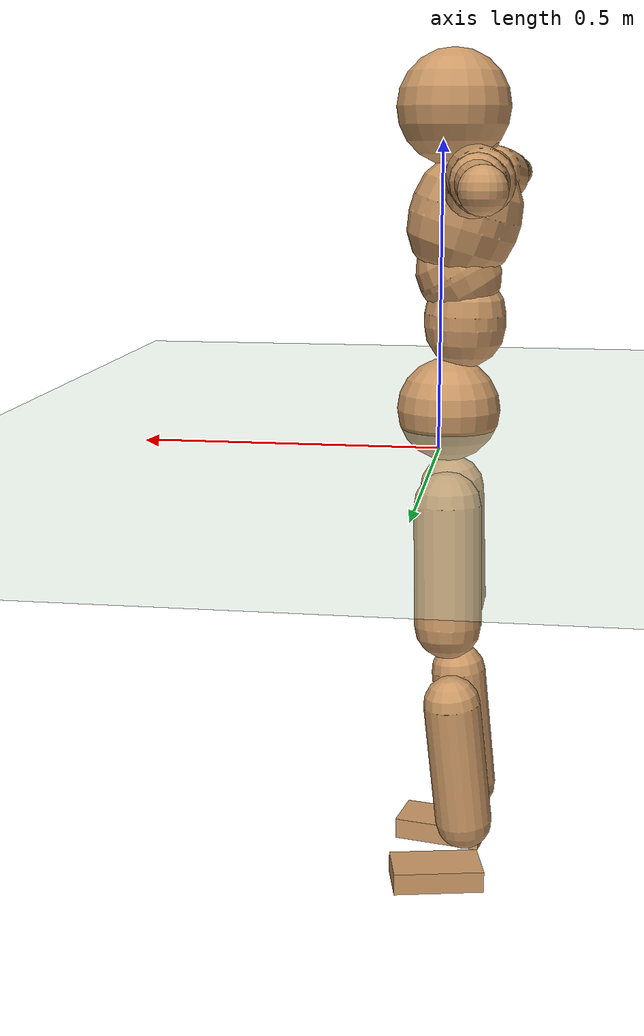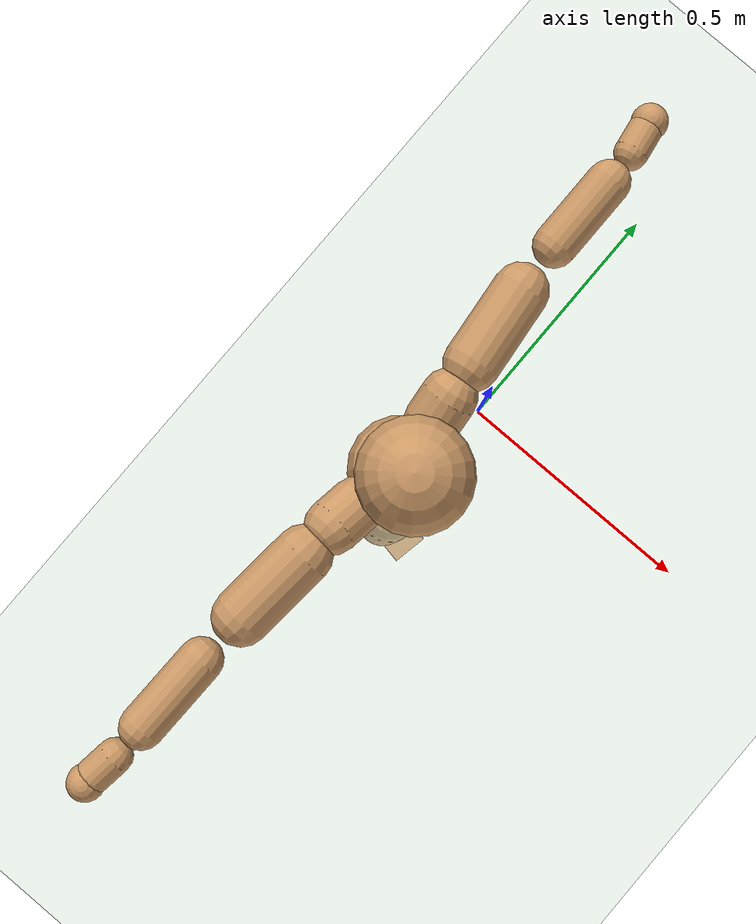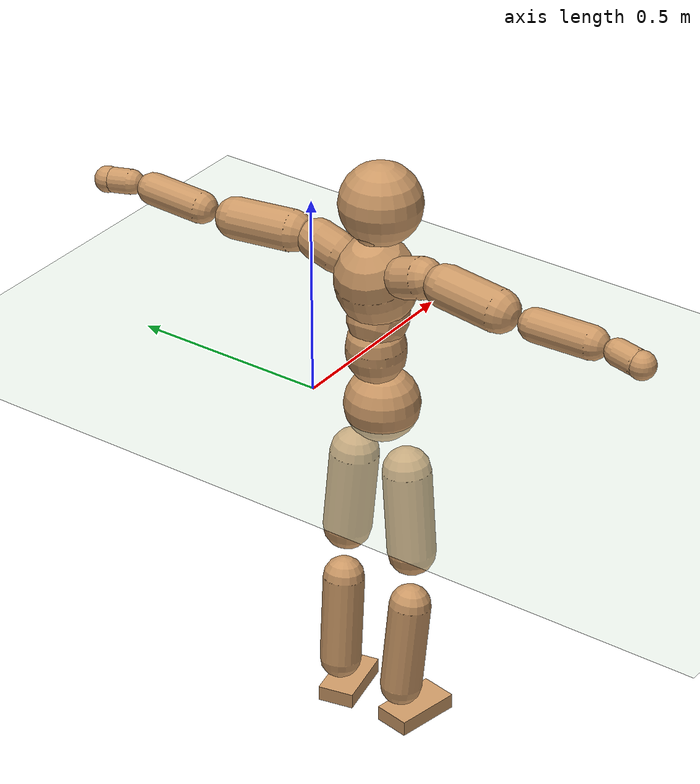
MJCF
<mujoco model="humanoid">
  <compiler coordinate="local"/>
  <default>
    <joint damping="0.0" armature="0.01" stiffness="0.0" limited="true"/>
    <geom conaffinity="1" condim="3" contype="7" margin="0.001" rgba="0.8 0.6 .4 1"/>
  </default>
  <asset>
    <texture type="skybox" builtin="gradient" rgb1=".4 .5 .6" rgb2="0 0 0" width="100" height="100"/>
    <texture builtin="flat" height="1278" mark="cross" markrgb="1 1 1" name="texgeom" random="0.01" rgb1="0.8 0.6 0.4" rgb2="0.8 0.6 0.4" type="cube" width="127"/>
    <texture builtin="checker" height="100" name="texplane" rgb1="0 0 0" rgb2="0.8 0.8 0.8" type="2d" width="100"/>
    <material name="MatPlane" reflectance="0.5" shininess="1" specular="1" texrepeat="60 60" texture="texplane"/>
    <material name="geom" texture="texgeom" texuniform="true"/>
  </asset>
  <worldbody>
    <light cutoff="100" diffuse="1 1 1" dir="-0 0 -1.3" directional="true" exponent="1" pos="0 0 1.3" specular=".1 .1 .1"/>
    <geom conaffinity="1" condim="3" name="floor" pos="0 0 0" rgba="0.8 0.9 0.8 1" size="100 100 .2" type="plane" material="MatPlane"/>
    <body name="Pelvis" pos="-0.0002 -0.2 0.0323">
      <freejoint name="Pelvis"/>
      <geom type="sphere" contype="1" conaffinity="1" density="500" size="0.0919" pos="0.0000 0.0000 0.0000" name="Pelvis"/>
      <body name="L_Hip" pos="-0.004 0.069 -0.087">
        <joint name="L_Hip_x" type="hinge" pos="0 0 0" axis="1 0 0" stiffness="800" damping="80" armature="0.02" range="-180.0000 180.0000"/>
        <joint name="L_Hip_y" type="hinge" pos="0 0 0" axis="0 1 0" stiffness="800" damping="80" armature="0.02" range="-180.0000 180.0000"/>
        <joint name="L_Hip_z" type="hinge" pos="0 0 0" axis="0 0 1" stiffness="800" damping="80" armature="0.02" range="-180.0000 180.0000"/>
        <geom type="capsule" contype="1" conaffinity="1" density="500" fromto="-0.0019 0.0059 -0.0716 -0.0074 0.0236 -0.2865" size="0.0597" name="L_Hip"/>
        <body name="L_Knee" pos="-0.0093 0.0295 -0.3581">
          <joint name="L_Knee_x" type="hinge" pos="0 0 0" axis="1 0 0" stiffness="800" damping="80" armature="0.02" range="-180.0000 180.0000"/>
          <joint name="L_Knee_y" type="hinge" pos="0 0 0" axis="0 1 0" stiffness="800" damping="80" armature="0.02" range="-180.0000 180.0000"/>
          <joint name="L_Knee_z" type="hinge" pos="0 0 0" axis="0 0 1" stiffness="800" damping="80" armature="0.02" range="-180.0000 180.0000"/>
          <geom type="capsule" contype="1" conaffinity="1" density="500" fromto="-0.0082 -0.0021 -0.0755 -0.0327 -0.0085 -0.3021" size="0.0513" name="L_Knee"/>
          <body name="L_Ankle" pos="-0.0409 -0.0107 -0.3777">
            <joint name="L_Ankle_x" type="hinge" pos="0 0 0" axis="1 0 0" stiffness="800" damping="80" armature="0.02" range="-180.0000 180.0000"/>
            <joint name="L_Ankle_y" type="hinge" pos="0 0 0" axis="0 1 0" stiffness="800" damping="80" armature="0.02" range="-180.0000 180.0000"/>
            <joint name="L_Ankle_z" type="hinge" pos="0 0 0" axis="0 0 1" stiffness="800" damping="80" armature="0.02" range="-180.0000 180.0000"/>
            <geom type="box" contype="1" conaffinity="1" density="500" pos="0.0565 0.0118 -0.0272" size="0.0821 0.0451 0.0197" quat="0.9947 0.0000 0.0000 0.1031" name="L_Ankle"/>
            <body name="L_Toe" pos="0.1131 0.0237 -0.0543">
              <joint name="L_Toe_x" type="hinge" pos="0 0 0" axis="1 0 0" stiffness="500" damping="50" armature="0.02" range="-180.0000 180.0000"/>
              <joint name="L_Toe_y" type="hinge" pos="0 0 0" axis="0 1 0" stiffness="500" damping="50" armature="0.02" range="-180.0000 180.0000"/>
              <joint name="L_Toe_z" type="hinge" pos="0 0 0" axis="0 0 1" stiffness="500" damping="50" armature="0.02" range="-180.0000 180.0000"/>
              <geom type="box" contype="1" conaffinity="1" density="500" pos="0.0000 0.0000 0.0267" size="0.0009 0.0023 0.001" quat="0.9940 0.0000 0.0000 0.1096" name="L_Toe"/>
            </body>
          </body>
        </body>
      </body>
      <body name="R_Hip" pos="-0.0013 -0.067 -0.0866">
        <joint name="R_Hip_x" type="hinge" pos="0 0 0" axis="1 0 0" stiffness="800" damping="80" armature="0.02" range="-180.0000 180.0000"/>
        <joint name="R_Hip_y" type="hinge" pos="0 0 0" axis="0 1 0" stiffness="800" damping="80" armature="0.02" range="-180.0000 180.0000"/>
        <joint name="R_Hip_z" type="hinge" pos="0 0 0" axis="0 0 1" stiffness="800" damping="80" armature="0.02" range="-180.0000 180.0000"/>
        <geom type="capsule" contype="1" conaffinity="1" density="500" fromto="-0.0022 -0.0068 -0.0727 -0.0089 -0.0273 -0.2907" size="0.059" name="R_Hip"/>
        <body name="R_Knee" pos="-0.0112 -0.0341 -0.3634">
          <joint name="R_Knee_x" type="hinge" pos="0 0 0" axis="1 0 0" stiffness="800" damping="80" armature="0.02" range="-180.0000 180.0000"/>
          <joint name="R_Knee_y" type="hinge" pos="0 0 0" axis="0 1 0" stiffness="800" damping="80" armature="0.02" range="-180.0000 180.0000"/>
          <joint name="R_Knee_z" type="hinge" pos="0 0 0" axis="0 0 1" stiffness="800" damping="80" armature="0.02" range="-180.0000 180.0000"/>
          <geom type="capsule" contype="1" conaffinity="1" density="500" fromto="-0.0080 0.0026 -0.0757 -0.0321 0.0105 -0.3028" size="0.0515" name="R_Knee"/>
          <body name="R_Ankle" pos="-0.0401 0.0132 -0.3785">
            <joint name="R_Ankle_x" type="hinge" pos="0 0 0" axis="1 0 0" stiffness="800" damping="80" armature="0.02" range="-180.0000 180.0000"/>
            <joint name="R_Ankle_y" type="hinge" pos="0 0 0" axis="0 1 0" stiffness="800" damping="80" armature="0.02" range="-180.0000 180.0000"/>
            <joint name="R_Ankle_z" type="hinge" pos="0 0 0" axis="0 0 1" stiffness="800" damping="80" armature="0.02" range="-180.0000 180.0000"/>
            <geom type="box" contype="1" conaffinity="1" density="500" pos="0.0582 -0.0112 -0.0223" size="0.0827 0.0456 0.0195" quat="0.9955 0.0000 0.0000 -0.0952" name="R_Ankle"/>
            <body name="R_Toe" pos="0.1164 -0.0225 -0.0447">
              <joint name="R_Toe_x" type="hinge" pos="0 0 0" axis="1 0 0" stiffness="500" damping="50" armature="0.02" range="-180.0000 180.0000"/>
              <joint name="R_Toe_y" type="hinge" pos="0 0 0" axis="0 1 0" stiffness="500" damping="50" armature="0.02" range="-180.0000 180.0000"/>
              <joint name="R_Toe_z" type="hinge" pos="0 0 0" axis="0 0 1" stiffness="500" damping="50" armature="0.02" range="-180.0000 180.0000"/>
              <geom type="box" contype="1" conaffinity="1" density="500" pos="0.0000 0.0000 0.0242" size="0.0009 0.0023 0.0011" quat="0.9963 0.0000 0.0000 -0.0855" name="R_Toe"/>
            </body>
          </body>
        </body>
      </body>
      <body name="Torso" pos="-0.0251 -0.0025 0.1001">
        <joint name="Torso_x" type="hinge" pos="0 0 0" axis="1 0 0" stiffness="1000" damping="100" armature="0.02" range="-180.0000 180.0000"/>
        <joint name="Torso_y" type="hinge" pos="0 0 0" axis="0 1 0" stiffness="1000" damping="100" armature="0.02" range="-180.0000 180.0000"/>
        <joint name="Torso_z" type="hinge" pos="0 0 0" axis="0 0 1" stiffness="1000" damping="100" armature="0.02" range="-180.0000 180.0000"/>
        <geom type="capsule" contype="1" conaffinity="1" density="500" fromto="-0.0016 0.0017 0.0704 -0.0011 0.0012 0.0469" size="0.0717" name="Torso"/>
        <body name="Spine" pos="-0.0026 0.0029 0.1173">
          <joint name="Spine_x" type="hinge" pos="0 0 0" axis="1 0 0" stiffness="1000" damping="100" armature="0.02" range="-180.0000 180.0000"/>
          <joint name="Spine_y" type="hinge" pos="0 0 0" axis="0 1 0" stiffness="1000" damping="100" armature="0.02" range="-180.0000 180.0000"/>
          <joint name="Spine_z" type="hinge" pos="0 0 0" axis="0 0 1" stiffness="1000" damping="100" armature="0.02" range="-180.0000 180.0000"/>
          <geom type="capsule" contype="1" conaffinity="1" density="500" fromto="0.0162 0.0015 0.0283 0.0108 0.0010 0.0189" size="0.0734" name="Spine"/>
          <body name="Chest" pos="0.027 0.0026 0.0472">
            <joint name="Chest_x" type="hinge" pos="0 0 0" axis="1 0 0" stiffness="1000" damping="100" armature="0.02" range="-180.0000 180.0000"/>
            <joint name="Chest_y" type="hinge" pos="0 0 0" axis="0 1 0" stiffness="1000" damping="100" armature="0.02" range="-180.0000 180.0000"/>
            <joint name="Chest_z" type="hinge" pos="0 0 0" axis="0 0 1" stiffness="1000" damping="100" armature="0.02" range="-180.0000 180.0000"/>
            <geom type="capsule" contype="1" conaffinity="1" density="500" fromto="-0.0268 -0.0005 0.0866 -0.0179 -0.0003 0.0577" size="0.0968" name="Chest"/>
            <body name="Neck" pos="-0.0505 -0.0005 0.2016">
              <joint name="Neck_x" type="hinge" pos="0 0 0" axis="1 0 0" stiffness="500" damping="50" armature="0.02" range="-180.0000 180.0000"/>
              <joint name="Neck_y" type="hinge" pos="0 0 0" axis="0 1 0" stiffness="500" damping="50" armature="0.02" range="-180.0000 180.0000"/>
              <joint name="Neck_z" type="hinge" pos="0 0 0" axis="0 0 1" stiffness="500" damping="50" armature="0.02" range="-180.0000 180.0000"/>
              <geom type="capsule" contype="1" conaffinity="1" density="500" fromto="0.0100 0.0005 0.0114 0.0399 0.0021 0.0455" size="0.0411" name="Neck"/>
              <body name="Head" pos="0.0499 0.0027 0.0569">
                <joint name="Head_x" type="hinge" pos="0 0 0" axis="1 0 0" stiffness="500" damping="50" armature="0.02" range="-180.0000 180.0000"/>
                <joint name="Head_y" type="hinge" pos="0 0 0" axis="0 1 0" stiffness="500" damping="50" armature="0.02" range="-180.0000 180.0000"/>
                <joint name="Head_z" type="hinge" pos="0 0 0" axis="0 0 1" stiffness="500" damping="50" armature="0.02" range="-180.0000 180.0000"/>
                <geom type="sphere" contype="1" conaffinity="1" density="500" size="0.0985" pos="0.0000 0.0000 0.0000" name="Head"/>
              </body>
            </body>
            <body name="L_Thorax" pos="-0.0392 0.0761 0.1169">
              <joint name="L_Thorax_x" type="hinge" pos="0 0 0" axis="1 0 0" stiffness="500" damping="50" armature="0.02" range="-180.0000 180.0000"/>
              <joint name="L_Thorax_y" type="hinge" pos="0 0 0" axis="0 1 0" stiffness="500" damping="50" armature="0.02" range="-180.0000 180.0000"/>
              <joint name="L_Thorax_z" type="hinge" pos="0 0 0" axis="0 0 1" stiffness="500" damping="50" armature="0.02" range="-180.0000 180.0000"/>
              <geom type="capsule" contype="1" conaffinity="1" density="500" fromto="-0.0016 0.0169 0.0063 -0.0063 0.0676 0.0253" size="0.0497" name="L_Thorax"/>
              <body name="L_Shoulder" pos="-0.0079 0.0845 0.0316">
                <joint name="L_Shoulder_x" type="hinge" pos="0 0 0" axis="1 0 0" stiffness="500" damping="50" armature="0.02" range="-720.0000 720.0000"/>
                <joint name="L_Shoulder_y" type="hinge" pos="0 0 0" axis="0 1 0" stiffness="500" damping="50" armature="0.02" range="-720.0000 720.0000"/>
                <joint name="L_Shoulder_z" type="hinge" pos="0 0 0" axis="0 0 1" stiffness="500" damping="50" armature="0.02" range="-720.0000 720.0000"/>
                <geom type="capsule" contype="1" conaffinity="1" density="500" fromto="-0.0056 0.0497 -0.0021 -0.0224 0.1987 -0.0082" size="0.0498" name="L_Shoulder"/>
                <body name="L_Elbow" pos="-0.028 0.2483 -0.0103">
                  <joint name="L_Elbow_x" type="hinge" pos="0 0 0" axis="1 0 0" stiffness="500" damping="50" armature="0.02" range="-720.0000 720.0000"/>
                  <joint name="L_Elbow_y" type="hinge" pos="0 0 0" axis="0 1 0" stiffness="500" damping="50" armature="0.02" range="-720.0000 720.0000"/>
                  <joint name="L_Elbow_z" type="hinge" pos="0 0 0" axis="0 0 1" stiffness="500" damping="50" armature="0.02" range="-720.0000 720.0000"/>
                  <geom type="capsule" contype="1" conaffinity="1" density="500" fromto="-0.0001 0.0472 0.0019 -0.0003 0.1888 0.0077" size="0.0386" name="L_Elbow"/>
                  <body name="L_Wrist" pos="-0.0004 0.236 0.0096">
                    <joint name="L_Wrist_x" type="hinge" pos="0 0 0" axis="1 0 0" stiffness="300" damping="30" armature="0.02" range="-180.0000 180.0000"/>
                    <joint name="L_Wrist_y" type="hinge" pos="0 0 0" axis="0 1 0" stiffness="300" damping="30" armature="0.02" range="-180.0000 180.0000"/>
                    <joint name="L_Wrist_z" type="hinge" pos="0 0 0" axis="0 0 1" stiffness="300" damping="30" armature="0.02" range="-180.0000 180.0000"/>
                    <geom type="capsule" contype="1" conaffinity="1" density="500" fromto="-0.0027 0.0159 -0.0019 -0.0107 0.0638 -0.0076" size="0.0301" name="L_Wrist"/>
                    <body name="L_Hand" pos="-0.0133 0.0797 -0.0095">
                      <joint name="L_Hand_x" type="hinge" pos="0 0 0" axis="1 0 0" stiffness="300" damping="30" armature="0.02" range="-180.0000 180.0000"/>
                      <joint name="L_Hand_y" type="hinge" pos="0 0 0" axis="0 1 0" stiffness="300" damping="30" armature="0.02" range="-180.0000 180.0000"/>
                      <joint name="L_Hand_z" type="hinge" pos="0 0 0" axis="0 0 1" stiffness="300" damping="30" armature="0.02" range="-180.0000 180.0000"/>
                      <geom type="sphere" contype="1" conaffinity="1" density="500" size="0.0322" pos="0.0000 0.0000 0.0000" name="L_Hand"/>
                    </body>
                  </body>
                </body>
              </body>
            </body>
            <body name="R_Thorax" pos="-0.0442 -0.0778 0.1145">
              <joint name="R_Thorax_x" type="hinge" pos="0 0 0" axis="1 0 0" stiffness="500" damping="50" armature="0.02" range="-180.0000 180.0000"/>
              <joint name="R_Thorax_y" type="hinge" pos="0 0 0" axis="0 1 0" stiffness="500" damping="50" armature="0.02" range="-180.0000 180.0000"/>
              <joint name="R_Thorax_z" type="hinge" pos="0 0 0" axis="0 0 1" stiffness="500" damping="50" armature="0.02" range="-180.0000 180.0000"/>
              <geom type="capsule" contype="1" conaffinity="1" density="500" fromto="-0.0023 -0.0179 0.0064 -0.0092 -0.0716 0.0256" size="0.0493" name="R_Thorax"/>
              <body name="R_Shoulder" pos="-0.0115 -0.0894 0.032">
                <joint name="R_Shoulder_x" type="hinge" pos="0 0 0" axis="1 0 0" stiffness="500" damping="50" armature="0.02" range="-720.0000 720.0000"/>
                <joint name="R_Shoulder_y" type="hinge" pos="0 0 0" axis="0 1 0" stiffness="500" damping="50" armature="0.02" range="-720.0000 720.0000"/>
                <joint name="R_Shoulder_z" type="hinge" pos="0 0 0" axis="0 0 1" stiffness="500" damping="50" armature="0.02" range="-720.0000 720.0000"/>
                <geom type="capsule" contype="1" conaffinity="1" density="500" fromto="-0.0041 -0.0489 -0.0024 -0.0165 -0.1957 -0.0095" size="0.0514" name="R_Shoulder"/>
                <body name="R_Elbow" pos="-0.0206 -0.2446 -0.0118">
                  <joint name="R_Elbow_x" type="hinge" pos="0 0 0" axis="1 0 0" stiffness="500" damping="50" armature="0.02" range="-720.0000 720.0000"/>
                  <joint name="R_Elbow_y" type="hinge" pos="0 0 0" axis="0 1 0" stiffness="500" damping="50" armature="0.02" range="-720.0000 720.0000"/>
                  <joint name="R_Elbow_z" type="hinge" pos="0 0 0" axis="0 0 1" stiffness="500" damping="50" armature="0.02" range="-720.0000 720.0000"/>
                  <geom type="capsule" contype="1" conaffinity="1" density="500" fromto="-0.0006 -0.0490 0.0020 -0.0026 -0.1959 0.0080" size="0.039" name="R_Elbow"/>
                  <body name="R_Wrist" pos="-0.0032 -0.2448 0.01">
                    <joint name="R_Wrist_x" type="hinge" pos="0 0 0" axis="1 0 0" stiffness="300" damping="30" armature="0.02" range="-180.0000 180.0000"/>
                    <joint name="R_Wrist_y" type="hinge" pos="0 0 0" axis="0 1 0" stiffness="300" damping="30" armature="0.02" range="-180.0000 180.0000"/>
                    <joint name="R_Wrist_z" type="hinge" pos="0 0 0" axis="0 0 1" stiffness="300" damping="30" armature="0.02" range="-180.0000 180.0000"/>
                    <geom type="capsule" contype="1" conaffinity="1" density="500" fromto="-0.0021 -0.0163 -0.0015 -0.0085 -0.0651 -0.0058" size="0.0313" name="R_Wrist"/>
                    <body name="R_Hand" pos="-0.0106 -0.0814 -0.0073">
                      <joint name="R_Hand_x" type="hinge" pos="0 0 0" axis="1 0 0" stiffness="300" damping="30" armature="0.02" range="-180.0000 180.0000"/>
                      <joint name="R_Hand_y" type="hinge" pos="0 0 0" axis="0 1 0" stiffness="300" damping="30" armature="0.02" range="-180.0000 180.0000"/>
                      <joint name="R_Hand_z" type="hinge" pos="0 0 0" axis="0 0 1" stiffness="300" damping="30" armature="0.02" range="-180.0000 180.0000"/>
                      <geom type="sphere" contype="1" conaffinity="1" density="500" size="0.0328" pos="0.0000 0.0000 0.0000" name="R_Hand"/>
                    </body>
                  </body>
                </body>
              </body>
            </body>
          </body>
        </body>
      </body>
    </body>
  </worldbody>
  <actuator>
    <motor name="L_Hip_x" joint="L_Hip_x" gear="500"/>
    <motor name="L_Hip_y" joint="L_Hip_y" gear="500"/>
    <motor name="L_Hip_z" joint="L_Hip_z" gear="500"/>
    <motor name="L_Knee_x" joint="L_Knee_x" gear="500"/>
    <motor name="L_Knee_y" joint="L_Knee_y" gear="500"/>
    <motor name="L_Knee_z" joint="L_Knee_z" gear="500"/>
    <motor name="L_Ankle_x" joint="L_Ankle_x" gear="500"/>
    <motor name="L_Ankle_y" joint="L_Ankle_y" gear="500"/>
    <motor name="L_Ankle_z" joint="L_Ankle_z" gear="500"/>
    <motor name="L_Toe_x" joint="L_Toe_x" gear="500"/>
    <motor name="L_Toe_y" joint="L_Toe_y" gear="500"/>
    <motor name="L_Toe_z" joint="L_Toe_z" gear="500"/>
    <motor name="R_Hip_x" joint="R_Hip_x" gear="500"/>
    <motor name="R_Hip_y" joint="R_Hip_y" gear="500"/>
    <motor name="R_Hip_z" joint="R_Hip_z" gear="500"/>
    <motor name="R_Knee_x" joint="R_Knee_x" gear="500"/>
    <motor name="R_Knee_y" joint="R_Knee_y" gear="500"/>
    <motor name="R_Knee_z" joint="R_Knee_z" gear="500"/>
    <motor name="R_Ankle_x" joint="R_Ankle_x" gear="500"/>
    <motor name="R_Ankle_y" joint="R_Ankle_y" gear="500"/>
    <motor name="R_Ankle_z" joint="R_Ankle_z" gear="500"/>
    <motor name="R_Toe_x" joint="R_Toe_x" gear="500"/>
    <motor name="R_Toe_y" joint="R_Toe_y" gear="500"/>
    <motor name="R_Toe_z" joint="R_Toe_z" gear="500"/>
    <motor name="Torso_x" joint="Torso_x" gear="500"/>
    <motor name="Torso_y" joint="Torso_y" gear="500"/>
    <motor name="Torso_z" joint="Torso_z" gear="500"/>
    <motor name="Spine_x" joint="Spine_x" gear="500"/>
    <motor name="Spine_y" joint="Spine_y" gear="500"/>
    <motor name="Spine_z" joint="Spine_z" gear="500"/>
    <motor name="Chest_x" joint="Chest_x" gear="500"/>
    <motor name="Chest_y" joint="Chest_y" gear="500"/>
    <motor name="Chest_z" joint="Chest_z" gear="500"/>
    <motor name="Neck_x" joint="Neck_x" gear="500"/>
    <motor name="Neck_y" joint="Neck_y" gear="500"/>
    <motor name="Neck_z" joint="Neck_z" gear="500"/>
    <motor name="Head_x" joint="Head_x" gear="500"/>
    <motor name="Head_y" joint="Head_y" gear="500"/>
    <motor name="Head_z" joint="Head_z" gear="500"/>
    <motor name="L_Thorax_x" joint="L_Thorax_x" gear="500"/>
    <motor name="L_Thorax_y" joint="L_Thorax_y" gear="500"/>
    <motor name="L_Thorax_z" joint="L_Thorax_z" gear="500"/>
    <motor name="L_Shoulder_x" joint="L_Shoulder_x" gear="500"/>
    <motor name="L_Shoulder_y" joint="L_Shoulder_y" gear="500"/>
    <motor name="L_Shoulder_z" joint="L_Shoulder_z" gear="500"/>
    <motor name="L_Elbow_x" joint="L_Elbow_x" gear="500"/>
    <motor name="L_Elbow_y" joint="L_Elbow_y" gear="500"/>
    <motor name="L_Elbow_z" joint="L_Elbow_z" gear="500"/>
    <motor name="L_Wrist_x" joint="L_Wrist_x" gear="500"/>
    <motor name="L_Wrist_y" joint="L_Wrist_y" gear="500"/>
    <motor name="L_Wrist_z" joint="L_Wrist_z" gear="500"/>
    <motor name="L_Hand_x" joint="L_Hand_x" gear="500"/>
    <motor name="L_Hand_y" joint="L_Hand_y" gear="500"/>
    <motor name="L_Hand_z" joint="L_Hand_z" gear="500"/>
    <motor name="R_Thorax_x" joint="R_Thorax_x" gear="500"/>
    <motor name="R_Thorax_y" joint="R_Thorax_y" gear="500"/>
    <motor name="R_Thorax_z" joint="R_Thorax_z" gear="500"/>
    <motor name="R_Shoulder_x" joint="R_Shoulder_x" gear="500"/>
    <motor name="R_Shoulder_y" joint="R_Shoulder_y" gear="500"/>
    <motor name="R_Shoulder_z" joint="R_Shoulder_z" gear="500"/>
    <motor name="R_Elbow_x" joint="R_Elbow_x" gear="500"/>
    <motor name="R_Elbow_y" joint="R_Elbow_y" gear="500"/>
    <motor name="R_Elbow_z" joint="R_Elbow_z" gear="500"/>
    <motor name="R_Wrist_x" joint="R_Wrist_x" gear="500"/>
    <motor name="R_Wrist_y" joint="R_Wrist_y" gear="500"/>
    <motor name="R_Wrist_z" joint="R_Wrist_z" gear="500"/>
    <motor name="R_Hand_x" joint="R_Hand_x" gear="500"/>
    <motor name="R_Hand_y" joint="R_Hand_y" gear="500"/>
    <motor name="R_Hand_z" joint="R_Hand_z" gear="500"/>
  </actuator>
  <contact>
    <exclude body1="Torso" body2="Chest"/>
    <exclude body1="Head" body2="Chest"/>
    <exclude body1="R_Knee" body2="R_Toe"/>
    <exclude body1="R_Knee" body2="L_Ankle"/>
    <exclude body1="R_Knee" body2="L_Toe"/>
    <exclude body1="L_Knee" body2="L_Toe"/>
    <exclude body1="L_Knee" body2="R_Ankle"/>
    <exclude body1="L_Knee" body2="R_Toe"/>
    <exclude body1="L_Shoulder" body2="Chest"/>
    <exclude body1="R_Shoulder" body2="Chest"/>
  </contact>
  <sensor/>
  <size njmax="700" nconmax="700"/>
</mujoco>
